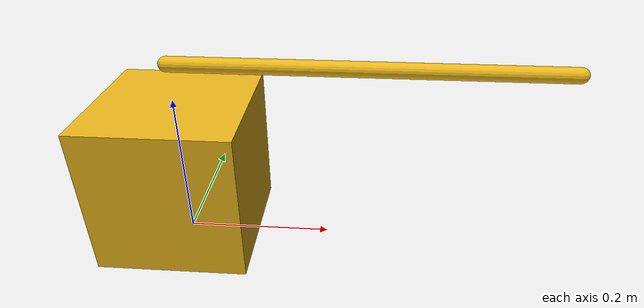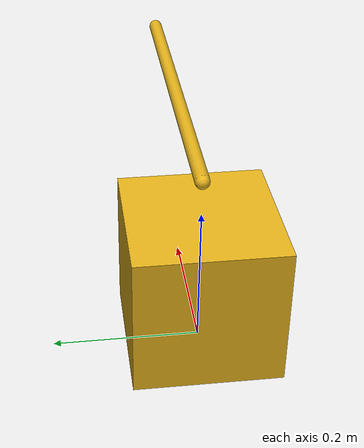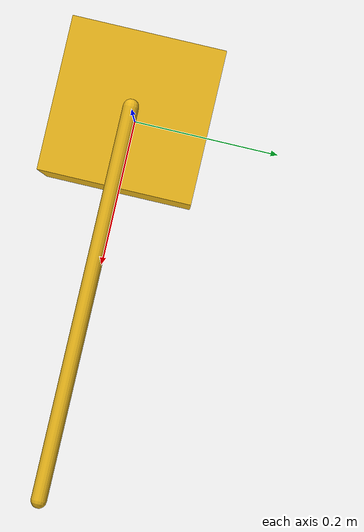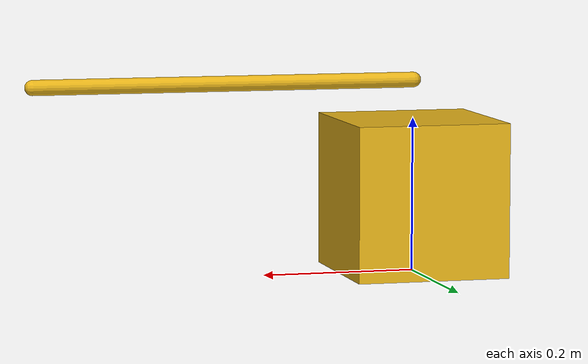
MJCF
<mujoco model="servo">
  <compiler angle="degree" coordinate="global" inertiafromgeom="true"/>
  <default>
    <geom rgba=".9 .7 .1 1" size="0.01"/>
    <joint axis="0 0 1" limited="false" solimplimit="0.95 0.95 0.1" type="hinge"/>
  </default>

  <worldbody>
    <body>
      <geom density="1" pos="0 0 0.1" size=".1 .1 .1" type="box"/>
      <body>
        <geom fromto="0 0 .25 .5 0 .25" type="capsule"/>
        <joint name="servo_1" pos="0 0 .1"/>
      </body>
    </body>
  </worldbody>

  <actuator>
    <position ctrllimited="false" ctrlrange="0 6.283185308" gear="1" joint="servo_1"/>
  </actuator>
</mujoco>
